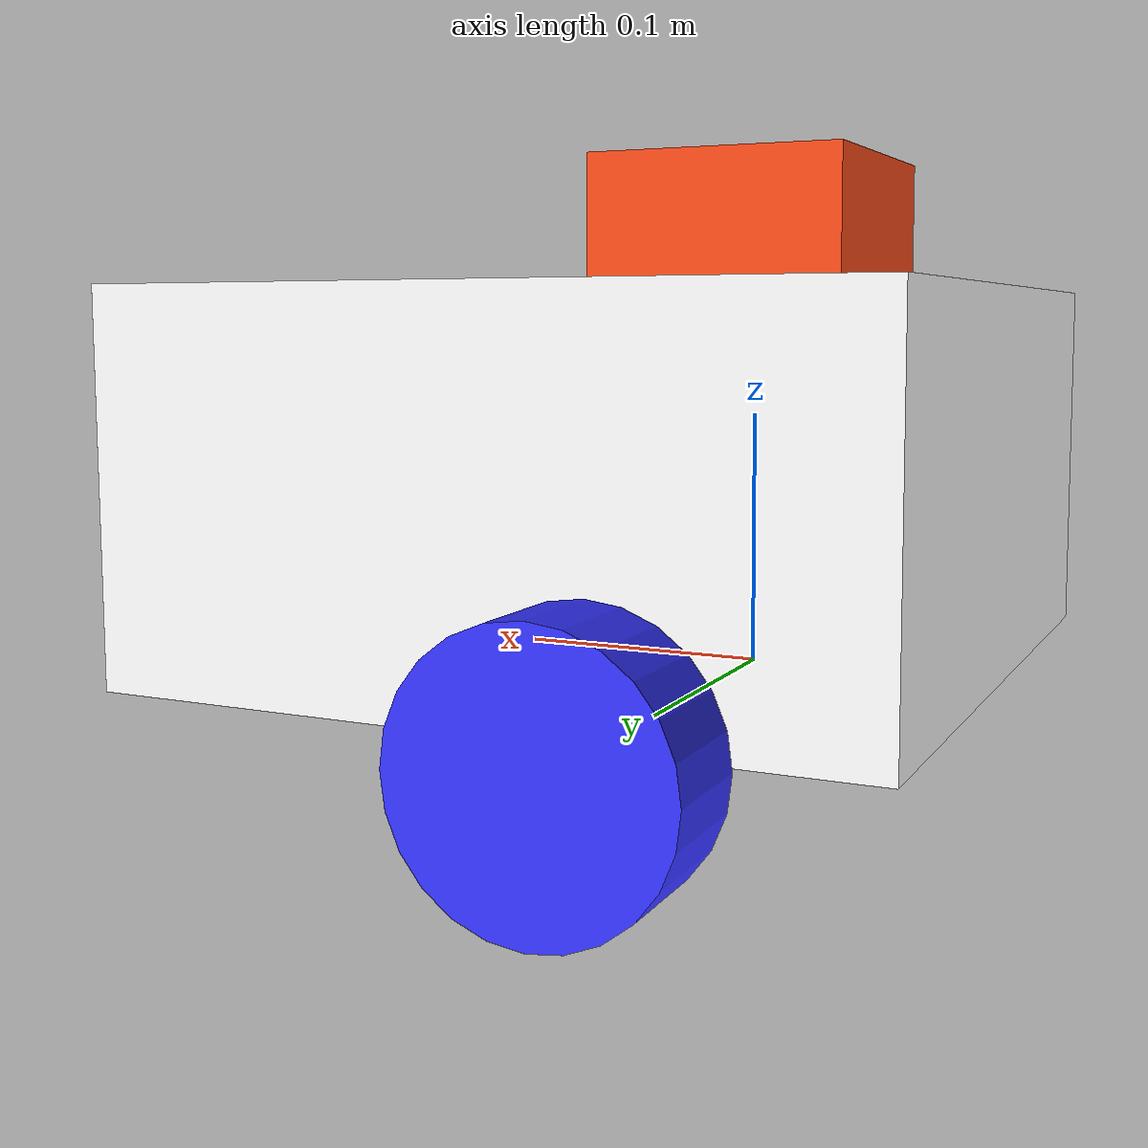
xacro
<?xml version="1.0"?>
<robot xmlns:xacro="http://www.ros.org/wiki/xacro"  name="robot">

    <xacro:include filename="robot_core.xacro" />
    <xacro:include filename="gazebo_control.xacro"/>
    <xacro:include filename="radar.xacro"/>

</robot>

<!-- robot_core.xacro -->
<robot xmlns:xacro="http://www.ros.org/wiki/xacro" >

    <xacro:include filename="inertial_macros.xacro"/>

    <material name="white">
        <color rgba="1 1 1 1" />
    </material>

    <material name="orange">
        <color rgba="1 0.3 0.1 1"/>
    </material>

    <material name="blue">
        <color rgba="0.2 0.2 1 1"/>
    </material>

    <material name="black">
        <color rgba="0 0 0 1"/>
    </material>

    <!-- BASE LINK -->

    <link name="base_link">

    </link>

    <!-- CHASSIS LINK -->

    <joint name="chassis_joint" type="fixed">
        <parent link="base_link"/>
        <child link="chassis"/>
        <origin xyz="-0.1 0 0"/>
    </joint>

    <link name="chassis">
        <visual>
            <origin xyz="0.15 0 0.075"/>
            <geometry>
                <box size="0.3 0.3 0.15"/>
            </geometry>
            <material name="white"/>
        </visual>
        <collision>
            <origin xyz="0.15 0 0.075"/>
            <geometry>
                <box size="0.3 0.3 0.15"/>
            </geometry>
        </collision>
        <xacro:inertial_box mass="0.5" x="0.3" y="0.3" z="0.15">
            <origin xyz="0.15 0 0.075" rpy="0 0 0"/>
        </xacro:inertial_box>
    </link>

    <gazebo reference="chassis">
        <material>Gazebo/White</material>
    </gazebo>

    <!-- LEFT WHEEL LINK -->

    <joint name="left_wheel_joint" type="continuous">
        <parent link="base_link"/>
        <child link="left_wheel"/>
        <origin xyz="0 0.175 0" rpy="-${pi/2} 0 0"/>
        <axis xyz="0 0 1"/>
    </joint>

    <link name="left_wheel">
        <visual>
            <geometry>
                <cylinder radius="0.05" length="0.04"/>
            </geometry>
            <material name="blue"/>
        </visual>
        <collision>
            <geometry>
                <cylinder radius="0.05" length="0.04"/>
            </geometry>
        </collision>
        <xacro:inertial_cylinder mass="0.1" length="0.04" radius="0.05">
            <origin xyz="0 0 0" rpy="0 0 0"/>
        </xacro:inertial_cylinder>
    </link>

    <gazebo reference="left_wheel">
        <material>Gazebo/Blue</material>
    </gazebo>

    <!-- RIGHT WHEEL LINK -->

    <joint name="right_wheel_joint" type="continuous">
        <parent link="base_link"/>
        <child link="right_wheel"/>
        <origin xyz="0 -0.175 0" rpy="${pi/2} 0 0"/>
        <axis xyz="0 0 -1"/>
    </joint>

    <link name="right_wheel">
        <visual>
            <geometry>
                <cylinder radius="0.05" length="0.04"/>
            </geometry>
            <material name="blue"/>
        </visual>
        <collision>
            <geometry>
                <cylinder radius="0.05" length="0.04"/>
            </geometry>
        </collision>
        <xacro:inertial_cylinder mass="0.1" length="0.04" radius="0.05">
            <origin xyz="0 0 0" rpy="0 0 0"/>
        </xacro:inertial_cylinder>
    </link>

    <gazebo reference="right_wheel">
        <material>Gazebo/Blue</material>
    </gazebo>

    <!-- CASTER WHEEL LINK -->

    <joint name="caster_wheel_joint" type="fixed">
        <parent link="chassis"/>
        <child link="caster_wheel"/>
        <origin xyz="0.24 0 0"/>
    </joint>

    <link name="caster_wheel">
        <visual>
            <geometry>
                <sphere radius="0.05"/>
            </geometry>
            <material name="black"/>
        </visual>
        <collision>
            <geometry>
                <sphere radius="0.05"/>
            </geometry>
        </collision>
        <xacro:inertial_sphere mass="0.1" radius="0.05">
            <origin xyz="0 0 0" rpy="0 0 0"/>
        </xacro:inertial_sphere>
    </link>

    <gazebo reference="caster_wheel">
        <material>Gazebo/Black</material>
        <mu1 value="0.001"/>
        <mu2 value="0.001"/>
    </gazebo>

</robot>

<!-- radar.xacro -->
<robot xmlns:xacro="http://www.ros.org/wiki/xacro" >

    <joint name="radar_joint" type="fixed">
        <parent link="chassis"/>
        <child link="radar_frame"/>
        <origin xyz="0.1 0 0.175" rpy="0 0 0"/>
    </joint>

    <link name="radar_frame">
        <visual>
            <geometry>
                <box size="0.1 0.1 0.05"/>
            </geometry>
            <material name="orange" />
        </visual>
        <collision>
            <geometry>
                <box size="0.1 0.1 0.05"/>
            </geometry>
        </collision>
        <xacro:inertial_cylinder mass="0.1" length="0.04" radius="0.05">
            <origin xyz="0 0 0"  rpy="0 0 0"/>
        </xacro:inertial_cylinder>
    </link>

    <gazebo reference="radar_frame">
        <material>Gazebo/Orange</material>

        <sensor name="radar" type="ray">
            <pose> 0 0 0 0 0 0 </pose>
            <visualize>true</visualize>
            <update_rate>10</update_rate>
            <ray>
                <scan>
                    <horizontal>
                        <samples>130</samples>
                        <min_angle>-0.65</min_angle>
                        <max_angle>0.65</max_angle>
                    </horizontal>
                </scan>
                <range>
                    <min>0.3</min>
                    <max>12</max>
                </range>
            </ray>
            <plugin name="radar_controller" filename="libgazebo_ros_ray_sensor.so">
                <ros>
                    <argument>~/out:=scan</argument>
                </ros>
                <output_type>sensor_msgs/LaserScan</output_type>
                <frame_name>radar_frame</frame_name>
                <recording>
                    <enable>true</enable>
                    <filename>/sep_bot/src/sep_bot/send/output.pcap</filename>
                    <format>pcap</format>
                </recording>

            </plugin>
        </sensor>
    </gazebo>

</robot>
